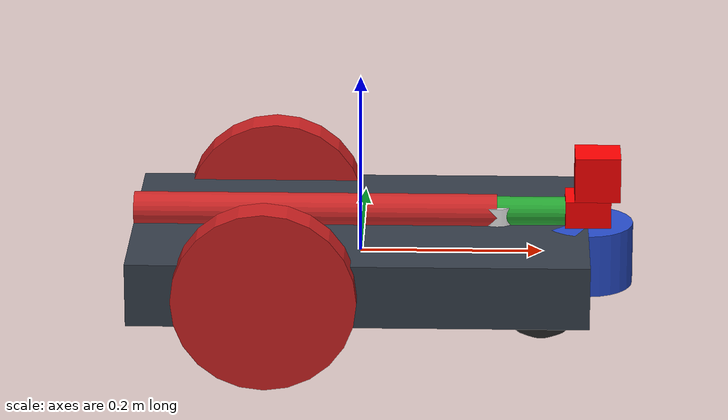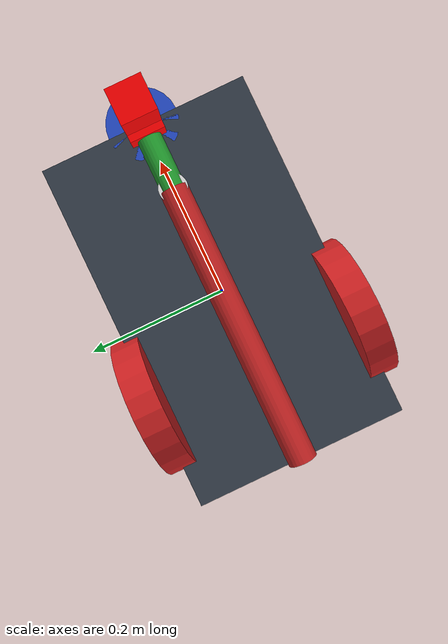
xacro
<?xml version="1.0"?>
<robot xmlns:xacro="http://www.ros.org/wiki/xacro" name="robot4_xacro">
<xacro:include filename="$(find assignment2)/urdf/robot4.gazebo"/>

	<xacro:property name="length_wheel" value="0.04" />
	<xacro:property name="radius_wheel" value="0.1" />

	<xacro:macro name="default_inertial" params="mass">
               <inertial>
                       <mass value="${mass}" />
                       <origin rpy="0 1.5707 1.5707" xyz="0 0 0"/>
                       <inertia ixx="0.000526666666667" ixy="0" ixz="0" iyy="0.000526666666667" iyz="0" izz="0.001"/>
               </inertial>
	</xacro:macro>

    <xacro:macro name="wheel_geometry">
		<geometry>
       			<cylinder length="${length_wheel}" radius="${radius_wheel}"/>
     	</geometry>
	</xacro:macro>

  <material name="black">
    <color rgba="0.0 0.0 0.0 1.0"/>
  </material>
  <material name="blue">
    <color rgba="0.203125 0.23828125 0.28515625 1.0"/>
  </material>
  <material name="green">
    <color rgba="0.0 0.8 0.0 1.0"/>
  </material>
  <material name="grey">
    <color rgba="0.2 0.2 0.2 1.0"/>
  </material>
  <material name="orange">
    <color rgba="1.0 0.423529411765 0.0392156862745 1.0"/>
  </material>
  <material name="brown">
    <color rgba="0.870588235294 0.811764705882 0.764705882353 1.0"/>
  </material>
  <material name="red">
    <color rgba="0.80078125 0.12890625 0.1328125 1.0"/>
  </material>
  <material name="white">
    <color rgba="1.0 1.0 1.0 1.0"/>
  </material>

	  <link name="link_chassis">
    <!-- pose and inertial -->
    <pose>0 0 0.1 0 0 0</pose>
    <inertial>
      <mass value="4"/>
      <origin rpy="0 0 0" xyz="0 0 0.1"/>
      <inertia ixx="0.0395416666667" ixy="0" ixz="0" iyy="0.106208333333" iyz="0" izz="0.106208333333"/>
    </inertial>
    <!-- body -->
    <collision name="collision_chassis">
      <geometry>
        <box size="0.5 0.3 0.07"/>
      </geometry>
    </collision>
    <visual>
      <origin rpy="0 0 0" xyz="0 0 0"/>
      <geometry>
        <box size="0.5 0.3 0.07"/>
      </geometry>
      <material name="blue"/>
    </visual>
    <!-- caster front -->
    <mass value="3"/>
    <collision name="caster_front_collision">
      <origin rpy=" 0 0 0" xyz="0.35 0 -0.05"/>
      <geometry>
        <sphere radius="0.05"/>
      </geometry>
    </collision>
    <visual name="caster_front_visual">
      <origin rpy=" 0 0 0" xyz="0.2 0 -0.05"/>
      <geometry>
        <sphere radius="0.05"/>
      </geometry>
    </visual>
  </link>

   <link name="link_right_wheel">
    <xacro:default_inertial mass="0.2"/>
    <collision name="link_right_wheel_collision">
      <origin rpy="0 1.5707 1.5707" xyz="0 0 0"/>
      <xacro:wheel_geometry />
    </collision>
    <visual name="link_right_wheel_visual">
      <origin rpy="0 1.5707 1.5707" xyz="0 0 0"/>
      <xacro:wheel_geometry />
      <material name="red"/>
    </visual>
  </link>

   <link name="link_left_wheel">
    <xacro:default_inertial mass="0.2"/>
    <collision name="link_left_wheel_collision">
      <origin rpy="0 1.5707 1.5707" xyz="0 0 0"/>
      <xacro:wheel_geometry />
    </collision>
    <visual name="link_left_wheel_visual">
      <origin rpy="0 1.5707 1.5707" xyz="0 0 0"/>
      <xacro:wheel_geometry />
      <material name="red"/>
    </visual>
  </link>

  <joint name="joint_right_wheel" type="continuous">
    <origin rpy="0 0 0" xyz="-0.1 0.15 0"/>
    <child link="link_right_wheel"/>
    <parent link="link_chassis"/>
    <axis rpy="0 0 0" xyz="0 1 0"/>
    <limit effort="10000" velocity="1000"/>
    <joint_properties damping="1.0" friction="1.0"/>
  </joint>

  <joint name="joint_left_wheel" type="continuous">
    <origin rpy="0 0 0" xyz="-0.1 -0.15 0"/>
    <child link="link_left_wheel"/>
    <parent link="link_chassis"/>
    <axis rpy="0 0 0" xyz="0 1 0"/>
    <limit effort="10000" velocity="1000"/>
    <joint_properties damping="1.0" friction="1.0"/>
  </joint>

  <link name="base_arm">
    <inertial>
   <mass value ="0.00001"/>
   <origin rpy="0 0 0" xyz="0 0 0.2"/>
   <inertia ixx="0.000526666666667" ixy="0" ixz="0" iyy="0.000526666666667" iyz="0" izz="0.001"/>
   </inertial>
   <collision name="collision_base_arm">
      <geometry>
        <cylinder length="0.4" radius="0.02"/>
        <color rgba="0.5 0.5 0.5 1.0"/>
      </geometry>
    </collision>
    <visual name="base_arm">
      <origin rpy="0 0 0" xyz="0 0 0.2"/>
      <geometry>
        <cylinder length="0.4" radius="0.02"/>
      </geometry>
    </visual>
  </link>

  <link name="link_arm">
    <inertial>
   <mass value ="0.00001"/>
   <origin rpy="0 0 0" xyz="0 0 0.25"/>
   <inertia ixx="0.000526666666667" ixy="0" ixz="0" iyy="0.000526666666667" iyz="0" izz="0.001"/>
   </inertial>
   <collision name="collision_link_arm">
      <geometry>
        <cylinder length="0.5" radius="0.017"/>
        <color rgba="0.5 0.5 0.5 1.0"/>
      </geometry>
    </collision>
    <visual name="link_arm">
      <origin rpy="0 0 0" xyz="0 0 0.25"/>
      <geometry>
        <cylinder length="0.5" radius="0.017"/>
      </geometry>
    </visual>
  </link>
  <link name="link_arm1">
    <inertial>
   <mass value ="0.00001"/>
   <origin rpy="0 0 0" xyz="0 0 0.15"/>
   <inertia ixx="0.000526666666667" ixy="0" ixz="0" iyy="0.000526666666667" iyz="0" izz="0.001"/>
   </inertial>
   <collision name="collision_link_arm1">
      <geometry>
        <cylinder length="0.3" radius="0.016"/>
        <color rgba="0.5 0.5 0.5 1.0"/>
      </geometry>
    </collision>
    <visual name="link_arm1">
      <origin rpy="0 0 0" xyz="0 0 0.15"/>
      <geometry>
        <cylinder length="0.3" radius="0.016"/>
      </geometry>
    </visual>
  </link>
  <link name="link_arm2">
    <inertial>
   <mass value ="0.00001"/>
   <origin rpy="0 0 0" xyz="0 0 0.15"/>
   <inertia ixx="0.000526666666667" ixy="0" ixz="0" iyy="0.000526666666667" iyz="0" izz="0.001"/>
   </inertial>
   <collision name="collision_link_arm2">
      <geometry>
        <cylinder length="0.3" radius="0.015"/>
        <color rgba="0.5 0.5 0.5 1.0"/>
      </geometry>
    </collision>
    <visual name="link_arm2">
      <origin rpy="0 0 0" xyz="0 0 0.15"/>
      <geometry>
        <cylinder length="0.3" radius="0.015"/>
      </geometry>
    </visual>
  </link>

  <link name="base_arm1">
    <inertial>
   <mass value ="0.05"/>
   <origin rpy="0 0 0" xyz="0 0 0.01"/>
   <inertia ixx="0.000526666666667" ixy="0" ixz="0" iyy="0.000526666666667" iyz="0" izz="0.001"/>
   </inertial>
   <collision name="collision_link_arm2">
      <geometry>
        <cylinder length="0.02" radius="0.02"/>
        <color rgba="0.5 0.5 0.5 1.0"/>
      </geometry>
    </collision>
    <visual name="base_arm1">
      <origin rpy="0 0 0" xyz="0 0 0.01"/>
      <geometry>
        <cylinder length="0.02" radius="0.02"/>
      </geometry>
    </visual>
  </link>

 <joint name="joint_base_arm1" type="continuous">
    <origin rpy="0 0 0" xyz="0.15 0 0.035"/>
    <limit   effort="40" velocity="0.2"/>
    <child link="base_arm1"/>
    <parent link="link_chassis"/>
    <axis rpy="0 0 0" xyz="0 0 1"/>
    <joint_properties damping="2.0" friction="1.0"/>
  </joint>

  <joint name="joint_base_arm" type="revolute">
    <origin rpy="0 -1.5708 0" xyz="0 0 0.01"/>
    <limit  lower="0" upper="3.14" effort="40" velocity="0.2"/>
    <child link="base_arm"/>
    <parent link="base_arm1"/>
    <axis rpy="0 0 0" xyz="0 1 0"/>
    <joint_properties damping="2.0" friction="1.0"/>
  </joint>

  <joint name="joint_link_arm" type="revolute">
    <origin rpy="0 3.14 0" xyz="0 0 0.4"/>
    <limit  lower="-3.14" upper="0" effort="40" velocity="0.2"/>
    <child link="link_arm"/>
    <parent link="base_arm"/>
    <axis rpy="0 0 0" xyz="0 1 0"/>
    <joint_properties damping="2.0" friction="1.0"/>
  </joint>

  <joint name="joint_link_arm1" type="prismatic">
    <origin rpy="0 0 0" xyz="0 0 0.2"/>
    <limit  lower="0" upper="0.3" effort="20" velocity="0.2"/>
    <child link="link_arm1"/>
    <parent link="link_arm"/>
    <axis rpy="0 0 0" xyz="0 0 1"/>
    <joint_properties damping="2.0" friction="1.0"/>
  </joint>
  <joint name="joint_link_arm2" type="prismatic">
    <origin rpy="0 0 0" xyz="0 0 0"/>
    <limit  lower="0" upper="0.3" effort="20" velocity="0.2"/>
    <child link="link_arm2"/>
    <parent link="link_arm1"/>
    <axis rpy="0 0 0" xyz="0 0 1"/>
    <joint_properties damping="2.0" friction="1.0"/>
  </joint>

  <link name="camera_link">
	    <collision>
	      <origin xyz="0 0 0.025" rpy="0 0 0"/>
	      <geometry>
		<box size="0.05 0.05 0.05"/>
	      </geometry>
	    </collision>
	    <visual>
	      <origin xyz="0 0 0.025" rpy="0 0 0"/>
	      <geometry>
		<box size="0.05 0.05 0.05"/>
	      </geometry>
	      <material name="red">
		<color rgba="1 0 0 1"/>
	      </material>
	    </visual>
	    <inertial>
	      <mass value="1e-5" />
	      <origin xyz="0 0 0" rpy="0 0 0"/>
	      <inertia ixx="1e-6" ixy="0" ixz="0" iyy="1e-6" iyz="0" izz="1e-6" />
	    </inertial>
  </link>

  <link name="link_arm3">
	    <collision>
	      <origin xyz="0 0 0.005" rpy="0 0 0"/>
	      <geometry>
		<box size="0.05 0.05 0.03"/>
	      </geometry>
	    </collision>
	    <visual>
	      <origin xyz="0 0 0.005" rpy="0 0 0"/>
	      <geometry>
		<box size="0.05 0.05 0.03"/>
	      </geometry>
	      <material name="red">
		<color rgba="1 0 0 1"/>
	      </material>
	    </visual>
	    <inertial>
	      <mass value="1e-5" />
	      <origin xyz="0 0 0" rpy="0 0 0"/>
	      <inertia ixx="1e-6" ixy="0" ixz="0" iyy="1e-6" iyz="0" izz="1e-6" />
	    </inertial>
  </link>

  <joint name="joint_link_arm3" type="revolute">
    <origin rpy="0 -1.5708 0" xyz= "0 0 0.3"/>
    <child link="link_arm3"/>
    <parent link="link_arm2"/>
    <axis rpy="0 0 0" xyz="0 1 0"/>
    <limit upper="1.5708" lower="-1.5708" effort="10" velocity="0.2"/>
    <joint_properties damping="1.0" friction="1.0"/>
  </joint>

  <joint name="camera_joint" type="fixed">
	    <origin rpy="0 0 0" xyz="0.01 0 0.02"/>
    	    <axis rpy="0 0 0" xyz="0 0 1"/>
    	    <parent link="link_arm3"/>
	    <child link="camera_link"/>
	 </joint>

  <link name="laserSc_link">
    <inertial>
   <mass value ="0.001"/>
   <origin rpy="0 0 0" xyz="0 0 0.035"/>
   <inertia ixx="0.000526666666667" ixy="0" ixz="0" iyy="0.000526666666667" iyz="0" izz="0.001"/>
   </inertial>
   <collision name="collision_laserSc_link">
      <geometry>
        <cylinder length="0.07" radius="0.05"/>
        <color rgba="0.2 0.2 0.2 1.0"/>
      </geometry>
    </collision>
    <visual name="laserSc_link">
      <origin rpy="0 0 0" xyz="0 0 0.035"/>
      <geometry>
        <cylinder length="0.07" radius="0.05"/>
      </geometry>
    </visual>
  </link>

  <joint name="laserSc_joint" type="fixed">
	    <origin rpy="0 0 0" xyz="0.25 0 -0.035"/>
    	    <axis rpy="0 0 0" xyz="0 0 1"/>
    	    <parent link="link_chassis"/>
	    <child link="laserSc_link"/>
	 </joint>

  <transmission name="joint_base_arm_trans">
	<type>transmission_interface/SimpleTransmission</type>
	<joint name="joint_base_arm">
		<hardwareInterface>hardware_interface/EffortJointInterface</hardwareInterface>
	</joint>
	<actuator name="motor0">
		<hardwareInterface>hardware_interface/EffortJointInterface</hardwareInterface>
		<mechanicalInterface>1</mechanicalInterface>
	</actuator>
  </transmission>
  <transmission name="joint_link_arm_trans">
	<type>transmission_interface/SimpleTransmission</type>
	<joint name="joint_link_arm">
		<hardwareInterface>hardware_interface/EffortJointInterface</hardwareInterface>
	</joint>
	<actuator name="motor1">
		<hardwareInterface>hardware_interface/EffortJointInterface</hardwareInterface>
		<mechanicalInterface>1</mechanicalInterface>
	</actuator>
  </transmission>
  <transmission name="joint_link_arm1_trans">
	<type>transmission_interface/SimpleTransmission</type>
	<joint name="joint_link_arm1">
		<hardwareInterface>hardware_interface/EffortJointInterface</hardwareInterface>
	</joint>
	<actuator name="motor2">
		<hardwareInterface>hardware_interface/EffortJointInterface</hardwareInterface>
		<mechanicalInterface>1</mechanicalInterface>
	</actuator>
  </transmission>
  <transmission name="joint_link_arm2_trans">
	<type>transmission_interface/SimpleTransmission</type>
	<joint name="joint_link_arm2">
		<hardwareInterface>hardware_interface/EffortJointInterface</hardwareInterface>
	</joint>
	<actuator name="motor3">
		<hardwareInterface>hardware_interface/EffortJointInterface</hardwareInterface>
		<mechanicalInterface>1</mechanicalInterface>
	</actuator>
  </transmission>
  <transmission name="joint_link_arm3_trans">
	<type>transmission_interface/SimpleTransmission</type>
	<joint name="joint_link_arm3">
		<hardwareInterface>hardware_interface/EffortJointInterface</hardwareInterface>
	</joint>
	<actuator name="motor4">
		<hardwareInterface>hardware_interface/EffortJointInterface</hardwareInterface>
		<mechanicalInterface>1</mechanicalInterface>
	</actuator>
  </transmission>

  <transmission name="joint_base_arm1_trans">
	<type>transmission_interface/SimpleTransmission</type>
	<joint name="joint_base_arm1">
		<hardwareInterface>hardware_interface/EffortJointInterface</hardwareInterface>
	</joint>
	<actuator name="motor5">
		<hardwareInterface>hardware_interface/EffortJointInterface</hardwareInterface>
		<mechanicalInterface>1</mechanicalInterface>
	</actuator>
  </transmission>

</robot>
